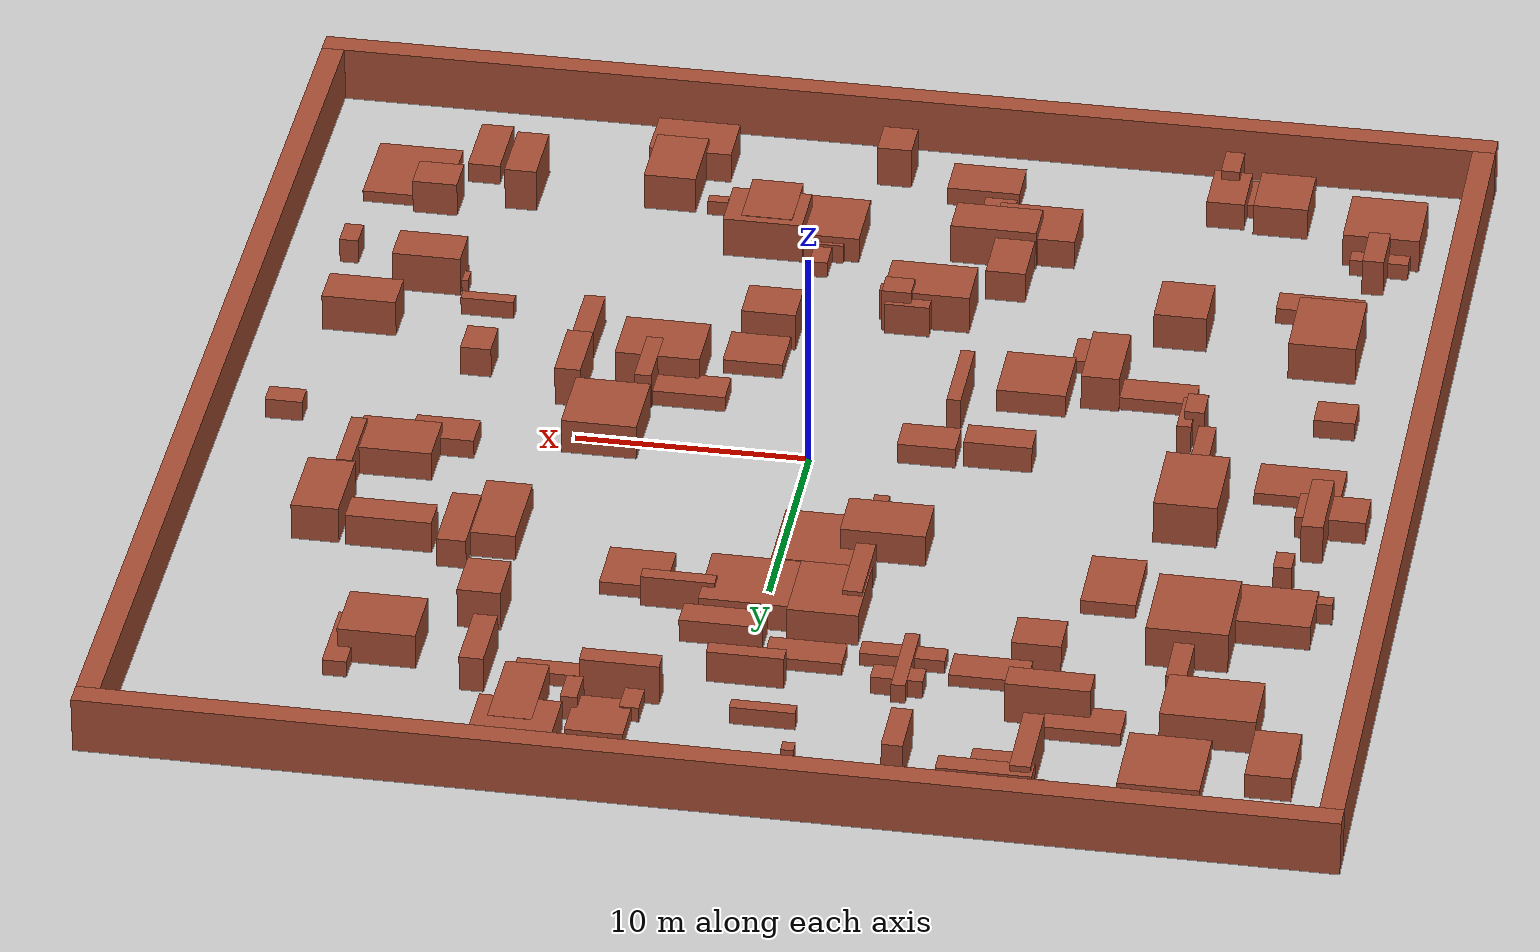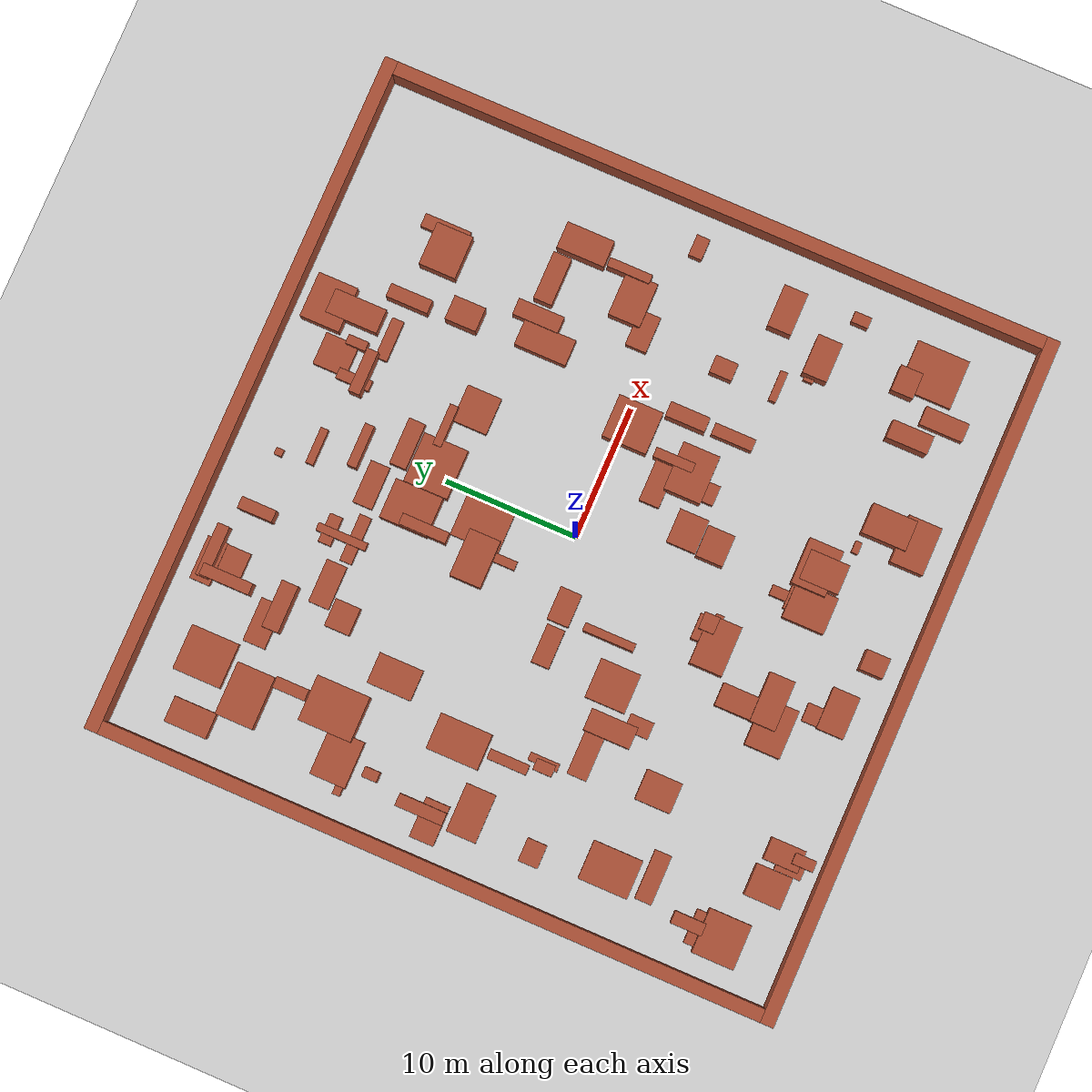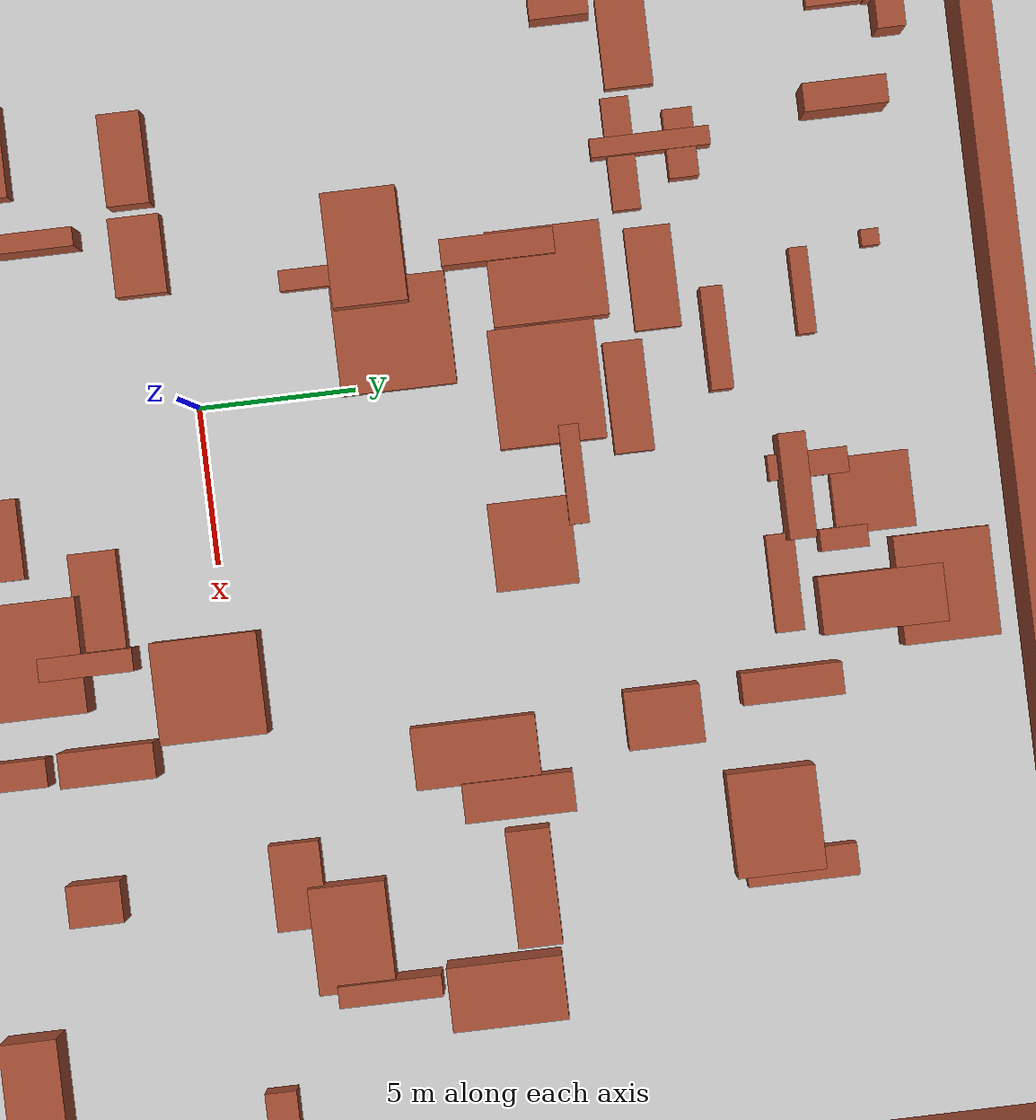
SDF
<?xml version="1.0" ?>
<sdf version="1.6">
  <world name="voronoi_50m_bricks_world">
    <include><uri>model://sun</uri></include>
    <include><uri>model://ground_plane</uri></include>
    <model name="voronoi_maze">
      <pose>0 0 0 0 0 0</pose>
      <static>true</static>
      <link name="obs_0">
        <pose>0.000 25.500 1.250 0 0 0</pose>
        <collision name="col_0"><geometry><box><size>52.000 1.000 2.500</size></box></geometry></collision>
        <visual name="vis_0"><geometry><box><size>52.000 1.000 2.500</size></box></geometry><material><script><name>Gazebo/Bricks</name></script></material></visual>
      </link>
      <link name="obs_1">
        <pose>0.000 -25.500 1.250 0 0 0</pose>
        <collision name="col_1"><geometry><box><size>52.000 1.000 2.500</size></box></geometry></collision>
        <visual name="vis_1"><geometry><box><size>52.000 1.000 2.500</size></box></geometry><material><script><name>Gazebo/Bricks</name></script></material></visual>
      </link>
      <link name="obs_2">
        <pose>-25.500 0.000 1.250 0 0 0</pose>
        <collision name="col_2"><geometry><box><size>1.000 50.000 2.500</size></box></geometry></collision>
        <visual name="vis_2"><geometry><box><size>1.000 50.000 2.500</size></box></geometry><material><script><name>Gazebo/Bricks</name></script></material></visual>
      </link>
      <link name="obs_3">
        <pose>25.500 0.000 1.250 0 0 0</pose>
        <collision name="col_3"><geometry><box><size>1.000 50.000 2.500</size></box></geometry></collision>
        <visual name="vis_3"><geometry><box><size>1.000 50.000 2.500</size></box></geometry><material><script><name>Gazebo/Bricks</name></script></material></visual>
      </link>
      <link name="obs_4">
        <pose>-19.514 16.766 0.769 0 0 0</pose>
        <collision name="col_4"><geometry><box><size>3.969 2.851 1.539</size></box></geometry></collision>
        <visual name="vis_4"><geometry><box><size>3.969 2.851 1.539</size></box></geometry><material><script><name>Gazebo/Bricks</name></script></material></visual>
      </link>
      <link name="obs_5">
        <pose>-22.444 1.428 0.520 0 0 0</pose>
        <collision name="col_5"><geometry><box><size>2.989 1.814 1.040</size></box></geometry></collision>
        <visual name="vis_5"><geometry><box><size>2.989 1.814 1.040</size></box></geometry><material><script><name>Gazebo/Bricks</name></script></material></visual>
      </link>
      <link name="obs_6">
        <pose>-2.500 -11.641 0.738 0 0 0</pose>
        <collision name="col_6"><geometry><box><size>1.933 2.802 1.476</size></box></geometry></collision>
        <visual name="vis_6"><geometry><box><size>1.933 2.802 1.476</size></box></geometry><material><script><name>Gazebo/Bricks</name></script></material></visual>
      </link>
      <link name="obs_7">
        <pose>-11.777 12.767 0.611 0 0 0</pose>
        <collision name="col_7"><geometry><box><size>2.076 1.876 1.222</size></box></geometry></collision>
        <visual name="vis_7"><geometry><box><size>2.076 1.876 1.222</size></box></geometry><material><script><name>Gazebo/Bricks</name></script></material></visual>
      </link>
      <link name="obs_8">
        <pose>-0.184 16.464 0.730 0 0 0</pose>
        <collision name="col_8"><geometry><box><size>3.235 0.702 1.461</size></box></geometry></collision>
        <visual name="vis_8"><geometry><box><size>3.235 0.702 1.461</size></box></geometry><material><script><name>Gazebo/Bricks</name></script></material></visual>
      </link>
      <link name="obs_9">
        <pose>1.845 -17.138 0.599 0 0 0</pose>
        <collision name="col_9"><geometry><box><size>2.773 3.166 1.197</size></box></geometry></collision>
        <visual name="vis_9"><geometry><box><size>2.773 3.166 1.197</size></box></geometry><material><script><name>Gazebo/Bricks</name></script></material></visual>
      </link>
      <link name="obs_10">
        <pose>0.244 10.735 0.407 0 0 0</pose>
        <collision name="col_10"><geometry><box><size>3.179 0.521 0.814</size></box></geometry></collision>
        <visual name="vis_10"><geometry><box><size>3.179 0.521 0.814</size></box></geometry><material><script><name>Gazebo/Bricks</name></script></material></visual>
      </link>
      <link name="obs_11">
        <pose>-20.489 -11.463 0.891 0 0 0</pose>
        <collision name="col_11"><geometry><box><size>2.884 3.697 1.782</size></box></geometry></collision>
        <visual name="vis_11"><geometry><box><size>2.884 3.697 1.782</size></box></geometry><material><script><name>Gazebo/Bricks</name></script></material></visual>
      </link>
      <link name="obs_12">
        <pose>13.333 8.646 0.682 0 0 0</pose>
        <collision name="col_12"><geometry><box><size>1.243 3.497 1.364</size></box></geometry></collision>
        <visual name="vis_12"><geometry><box><size>1.243 3.497 1.364</size></box></geometry><material><script><name>Gazebo/Bricks</name></script></material></visual>
      </link>
      <link name="obs_13">
        <pose>15.660 -18.880 0.993 0 0 0</pose>
        <collision name="col_13"><geometry><box><size>1.394 3.115 1.986</size></box></geometry></collision>
        <visual name="vis_13"><geometry><box><size>1.394 3.115 1.986</size></box></geometry><material><script><name>Gazebo/Bricks</name></script></material></visual>
      </link>
      <link name="obs_14">
        <pose>-8.683 -6.576 0.531 0 0 0</pose>
        <collision name="col_14"><geometry><box><size>2.961 3.024 1.063</size></box></geometry></collision>
        <visual name="vis_14"><geometry><box><size>2.961 3.024 1.063</size></box></geometry><material><script><name>Gazebo/Bricks</name></script></material></visual>
      </link>
      <link name="obs_15">
        <pose>-2.814 21.689 0.303 0 0 0</pose>
        <collision name="col_15"><geometry><box><size>0.530 0.573 0.605</size></box></geometry></collision>
        <visual name="vis_15"><geometry><box><size>0.530 0.573 0.605</size></box></geometry><material><script><name>Gazebo/Bricks</name></script></material></visual>
      </link>
      <link name="obs_16">
        <pose>18.837 3.963 0.801 0 0 0</pose>
        <collision name="col_16"><geometry><box><size>0.678 3.253 1.603</size></box></geometry></collision>
        <visual name="vis_16"><geometry><box><size>0.678 3.253 1.603</size></box></geometry><material><script><name>Gazebo/Bricks</name></script></material></visual>
      </link>
      <link name="obs_17">
        <pose>-2.796 11.420 0.734 0 0 0</pose>
        <collision name="col_17"><geometry><box><size>2.982 3.620 1.468</size></box></geometry></collision>
        <visual name="vis_17"><geometry><box><size>2.982 3.620 1.468</size></box></geometry><material><script><name>Gazebo/Bricks</name></script></material></visual>
      </link>
      <link name="obs_18">
        <pose>3.509 11.538 0.722 0 0 0</pose>
        <collision name="col_18"><geometry><box><size>3.121 0.625 1.443</size></box></geometry></collision>
        <visual name="vis_18"><geometry><box><size>3.121 0.625 1.443</size></box></geometry><material><script><name>Gazebo/Bricks</name></script></material></visual>
      </link>
      <link name="obs_19">
        <pose>8.799 -0.567 0.799 0 0 0</pose>
        <collision name="col_19"><geometry><box><size>3.211 3.370 1.598</size></box></geometry></collision>
        <visual name="vis_19"><geometry><box><size>3.211 3.370 1.598</size></box></geometry><material><script><name>Gazebo/Bricks</name></script></material></visual>
      </link>
      <link name="obs_20">
        <pose>19.319 7.577 0.838 0 0 0</pose>
        <collision name="col_20"><geometry><box><size>2.014 3.630 1.677</size></box></geometry></collision>
        <visual name="vis_20"><geometry><box><size>2.014 3.630 1.677</size></box></geometry><material><script><name>Gazebo/Bricks</name></script></material></visual>
      </link>
      <link name="obs_21">
        <pose>-14.370 17.781 0.308 0 0 0</pose>
        <collision name="col_21"><geometry><box><size>3.302 1.673 0.615</size></box></geometry></collision>
        <visual name="vis_21"><geometry><box><size>3.302 1.673 0.615</size></box></geometry><material><script><name>Gazebo/Bricks</name></script></material></visual>
      </link>
      <link name="obs_22">
        <pose>-3.248 -12.066 0.884 0 0 0</pose>
        <collision name="col_22"><geometry><box><size>3.733 2.464 1.768</size></box></geometry></collision>
        <visual name="vis_22"><geometry><box><size>3.733 2.464 1.768</size></box></geometry><material><script><name>Gazebo/Bricks</name></script></material></visual>
      </link>
      <link name="obs_23">
        <pose>5.892 -3.831 0.360 0 0 0</pose>
        <collision name="col_23"><geometry><box><size>3.513 1.529 0.720</size></box></geometry></collision>
        <visual name="vis_23"><geometry><box><size>3.513 1.529 0.720</size></box></geometry><material><script><name>Gazebo/Bricks</name></script></material></visual>
      </link>
      <link name="obs_24">
        <pose>18.223 -10.753 0.308 0 0 0</pose>
        <collision name="col_24"><geometry><box><size>3.159 0.755 0.616</size></box></geometry></collision>
        <visual name="vis_24"><geometry><box><size>3.159 0.755 0.616</size></box></geometry><material><script><name>Gazebo/Bricks</name></script></material></visual>
      </link>
      <link name="obs_25">
        <pose>1.293 13.528 0.530 0 0 0</pose>
        <collision name="col_25"><geometry><box><size>3.499 1.252 1.060</size></box></geometry></collision>
        <visual name="vis_25"><geometry><box><size>3.499 1.252 1.060</size></box></geometry><material><script><name>Gazebo/Bricks</name></script></material></visual>
      </link>
      <link name="obs_26">
        <pose>-15.832 -4.437 0.872 0 0 0</pose>
        <collision name="col_26"><geometry><box><size>0.859 1.407 1.744</size></box></geometry></collision>
        <visual name="vis_26"><geometry><box><size>0.859 1.407 1.744</size></box></geometry><material><script><name>Gazebo/Bricks</name></script></material></visual>
      </link>
      <link name="obs_27">
        <pose>-12.845 17.015 0.943 0 0 0</pose>
        <collision name="col_27"><geometry><box><size>3.549 1.243 1.886</size></box></geometry></collision>
        <visual name="vis_27"><geometry><box><size>3.549 1.243 1.886</size></box></geometry><material><script><name>Gazebo/Bricks</name></script></material></visual>
      </link>
      <link name="obs_28">
        <pose>10.796 17.524 0.817 0 0 0</pose>
        <collision name="col_28"><geometry><box><size>1.014 3.184 1.635</size></box></geometry></collision>
        <visual name="vis_28"><geometry><box><size>1.014 3.184 1.635</size></box></geometry><material><script><name>Gazebo/Bricks</name></script></material></visual>
      </link>
      <link name="obs_29">
        <pose>7.125 -18.528 0.343 0 0 0</pose>
        <collision name="col_29"><geometry><box><size>0.885 0.502 0.686</size></box></geometry></collision>
        <visual name="vis_29"><geometry><box><size>0.885 0.502 0.686</size></box></geometry><material><script><name>Gazebo/Bricks</name></script></material></visual>
      </link>
      <link name="obs_30">
        <pose>1.992 -15.567 0.381 0 0 0</pose>
        <collision name="col_30"><geometry><box><size>0.781 2.887 0.761</size></box></geometry></collision>
        <visual name="vis_30"><geometry><box><size>0.781 2.887 0.761</size></box></geometry><material><script><name>Gazebo/Bricks</name></script></material></visual>
      </link>
      <link name="obs_31">
        <pose>-5.303 -17.244 0.923 0 0 0</pose>
        <collision name="col_31"><geometry><box><size>3.735 1.903 1.846</size></box></geometry></collision>
        <visual name="vis_31"><geometry><box><size>3.735 1.903 1.846</size></box></geometry><material><script><name>Gazebo/Bricks</name></script></material></visual>
      </link>
      <link name="obs_32">
        <pose>-11.846 23.100 0.319 0 0 0</pose>
        <collision name="col_32"><geometry><box><size>3.273 1.519 0.638</size></box></geometry></collision>
        <visual name="vis_32"><geometry><box><size>3.273 1.519 0.638</size></box></geometry><material><script><name>Gazebo/Bricks</name></script></material></visual>
      </link>
      <link name="obs_33">
        <pose>6.536 -6.251 0.391 0 0 0</pose>
        <collision name="col_33"><geometry><box><size>1.499 3.540 0.783</size></box></geometry></collision>
        <visual name="vis_33"><geometry><box><size>1.499 3.540 0.783</size></box></geometry><material><script><name>Gazebo/Bricks</name></script></material></visual>
      </link>
      <link name="obs_34">
        <pose>4.690 18.373 0.933 0 0 0</pose>
        <collision name="col_34"><geometry><box><size>3.321 0.858 1.866</size></box></geometry></collision>
        <visual name="vis_34"><geometry><box><size>3.321 0.858 1.866</size></box></geometry><material><script><name>Gazebo/Bricks</name></script></material></visual>
      </link>
      <link name="obs_35">
        <pose>-4.165 -21.844 0.425 0 0 0</pose>
        <collision name="col_35"><geometry><box><size>3.175 2.037 0.851</size></box></geometry></collision>
        <visual name="vis_35"><geometry><box><size>3.175 2.037 0.851</size></box></geometry><material><script><name>Gazebo/Bricks</name></script></material></visual>
      </link>
      <link name="obs_36">
        <pose>-12.565 21.288 0.894 0 0 0</pose>
        <collision name="col_36"><geometry><box><size>0.873 3.784 1.787</size></box></geometry></collision>
        <visual name="vis_36"><geometry><box><size>0.873 3.784 1.787</size></box></geometry><material><script><name>Gazebo/Bricks</name></script></material></visual>
      </link>
      <link name="obs_37">
        <pose>-21.748 -17.873 0.851 0 0 0</pose>
        <collision name="col_37"><geometry><box><size>0.927 2.316 1.703</size></box></geometry></collision>
        <visual name="vis_37"><geometry><box><size>0.927 2.316 1.703</size></box></geometry><material><script><name>Gazebo/Bricks</name></script></material></visual>
      </link>
      <link name="obs_38">
        <pose>8.521 20.668 0.682 0 0 0</pose>
        <collision name="col_38"><geometry><box><size>1.829 3.945 1.363</size></box></geometry></collision>
        <visual name="vis_38"><geometry><box><size>1.829 3.945 1.363</size></box></geometry><material><script><name>Gazebo/Bricks</name></script></material></visual>
      </link>
      <link name="obs_39">
        <pose>-5.674 -5.009 0.838 0 0 0</pose>
        <collision name="col_39"><geometry><box><size>0.598 3.861 1.676</size></box></geometry></collision>
        <visual name="vis_39"><geometry><box><size>0.598 3.861 1.676</size></box></geometry><material><script><name>Gazebo/Bricks</name></script></material></visual>
      </link>
      <link name="obs_40">
        <pose>-6.254 -15.214 0.721 0 0 0</pose>
        <collision name="col_40"><geometry><box><size>1.726 3.194 1.442</size></box></geometry></collision>
        <visual name="vis_40"><geometry><box><size>1.726 3.194 1.442</size></box></geometry><material><script><name>Gazebo/Bricks</name></script></material></visual>
      </link>
      <link name="obs_41">
        <pose>-21.604 -6.039 0.434 0 0 0</pose>
        <collision name="col_41"><geometry><box><size>1.751 1.480 0.869</size></box></geometry></collision>
        <visual name="vis_41"><geometry><box><size>1.751 1.480 0.869</size></box></geometry><material><script><name>Gazebo/Bricks</name></script></material></visual>
      </link>
      <link name="obs_42">
        <pose>8.334 22.689 0.679 0 0 0</pose>
        <collision name="col_42"><geometry><box><size>3.418 3.019 1.357</size></box></geometry></collision>
        <visual name="vis_42"><geometry><box><size>3.418 3.019 1.357</size></box></geometry><material><script><name>Gazebo/Bricks</name></script></material></visual>
      </link>
      <link name="obs_43">
        <pose>-17.802 14.049 0.695 0 0 0</pose>
        <collision name="col_43"><geometry><box><size>0.854 2.448 1.390</size></box></geometry></collision>
        <visual name="vis_43"><geometry><box><size>0.854 2.448 1.390</size></box></geometry><material><script><name>Gazebo/Bricks</name></script></material></visual>
      </link>
      <link name="obs_44">
        <pose>-3.798 9.990 0.832 0 0 0</pose>
        <collision name="col_44"><geometry><box><size>0.829 3.567 1.664</size></box></geometry></collision>
        <visual name="vis_44"><geometry><box><size>0.829 3.567 1.664</size></box></geometry><material><script><name>Gazebo/Bricks</name></script></material></visual>
      </link>
      <link name="obs_45">
        <pose>10.822 -7.467 0.670 0 0 0</pose>
        <collision name="col_45"><geometry><box><size>0.899 3.109 1.340</size></box></geometry></collision>
        <visual name="vis_45"><geometry><box><size>0.899 3.109 1.340</size></box></geometry><material><script><name>Gazebo/Bricks</name></script></material></visual>
      </link>
      <link name="obs_46">
        <pose>-18.091 20.496 0.402 0 0 0</pose>
        <collision name="col_46"><geometry><box><size>3.385 3.622 0.804</size></box></geometry></collision>
        <visual name="vis_46"><geometry><box><size>3.385 3.622 0.804</size></box></geometry><material><script><name>Gazebo/Bricks</name></script></material></visual>
      </link>
      <link name="obs_47">
        <pose>-4.925 -1.257 0.471 0 0 0</pose>
        <collision name="col_47"><geometry><box><size>2.486 1.625 0.943</size></box></geometry></collision>
        <visual name="vis_47"><geometry><box><size>2.486 1.625 0.943</size></box></geometry><material><script><name>Gazebo/Bricks</name></script></material></visual>
      </link>
      <link name="obs_48">
        <pose>-10.543 -9.396 0.312 0 0 0</pose>
        <collision name="col_48"><geometry><box><size>1.254 1.777 0.623</size></box></geometry></collision>
        <visual name="vis_48"><geometry><box><size>1.254 1.777 0.623</size></box></geometry><material><script><name>Gazebo/Bricks</name></script></material></visual>
      </link>
      <link name="obs_49">
        <pose>-2.368 14.741 0.281 0 0 0</pose>
        <collision name="col_49"><geometry><box><size>3.244 1.468 0.563</size></box></geometry></collision>
        <visual name="vis_49"><geometry><box><size>3.244 1.468 0.563</size></box></geometry><material><script><name>Gazebo/Bricks</name></script></material></visual>
      </link>
      <link name="obs_50">
        <pose>-20.763 -0.982 0.284 0 0 0</pose>
        <collision name="col_50"><geometry><box><size>3.652 2.251 0.569</size></box></geometry></collision>
        <visual name="vis_50"><geometry><box><size>3.652 2.251 0.569</size></box></geometry><material><script><name>Gazebo/Bricks</name></script></material></visual>
      </link>
      <link name="obs_51">
        <pose>20.654 -7.436 0.845 0 0 0</pose>
        <collision name="col_51"><geometry><box><size>3.211 1.816 1.690</size></box></geometry></collision>
        <visual name="vis_51"><geometry><box><size>3.211 1.816 1.690</size></box></geometry><material><script><name>Gazebo/Bricks</name></script></material></visual>
      </link>
      <link name="obs_52">
        <pose>-6.985 -17.941 0.680 0 0 0</pose>
        <collision name="col_52"><geometry><box><size>3.622 2.654 1.361</size></box></geometry></collision>
        <visual name="vis_52"><geometry><box><size>3.622 2.654 1.361</size></box></geometry><material><script><name>Gazebo/Bricks</name></script></material></visual>
      </link>
      <link name="obs_53">
        <pose>15.083 -4.900 0.693 0 0 0</pose>
        <collision name="col_53"><geometry><box><size>1.320 1.714 1.385</size></box></geometry></collision>
        <visual name="vis_53"><geometry><box><size>1.320 1.714 1.385</size></box></geometry><material><script><name>Gazebo/Bricks</name></script></material></visual>
      </link>
      <link name="obs_54">
        <pose>-16.460 -1.964 0.639 0 0 0</pose>
        <collision name="col_54"><geometry><box><size>0.757 2.969 1.278</size></box></geometry></collision>
        <visual name="vis_54"><geometry><box><size>0.757 2.969 1.278</size></box></geometry><material><script><name>Gazebo/Bricks</name></script></material></visual>
      </link>
      <link name="obs_55">
        <pose>-19.807 -14.428 0.380 0 0 0</pose>
        <collision name="col_55"><geometry><box><size>3.698 1.265 0.759</size></box></geometry></collision>
        <visual name="vis_55"><geometry><box><size>3.698 1.265 0.759</size></box></geometry><material><script><name>Gazebo/Bricks</name></script></material></visual>
      </link>
      <link name="obs_56">
        <pose>-0.550 10.946 0.485 0 0 0</pose>
        <collision name="col_56"><geometry><box><size>2.217 0.752 0.969</size></box></geometry></collision>
        <visual name="vis_56"><geometry><box><size>2.217 0.752 0.969</size></box></geometry><material><script><name>Gazebo/Bricks</name></script></material></visual>
      </link>
      <link name="obs_57">
        <pose>22.471 0.114 0.469 0 0 0</pose>
        <collision name="col_57"><geometry><box><size>1.605 1.008 0.938</size></box></geometry></collision>
        <visual name="vis_57"><geometry><box><size>1.605 1.008 0.938</size></box></geometry><material><script><name>Gazebo/Bricks</name></script></material></visual>
      </link>
      <link name="obs_58">
        <pose>19.269 -17.187 0.787 0 0 0</pose>
        <collision name="col_58"><geometry><box><size>1.958 1.674 1.575</size></box></geometry></collision>
        <visual name="vis_58"><geometry><box><size>1.958 1.674 1.575</size></box></geometry><material><script><name>Gazebo/Bricks</name></script></material></visual>
      </link>
      <link name="obs_59">
        <pose>18.414 -11.043 0.920 0 0 0</pose>
        <collision name="col_59"><geometry><box><size>2.980 1.855 1.840</size></box></geometry></collision>
        <visual name="vis_59"><geometry><box><size>2.980 1.855 1.840</size></box></geometry><material><script><name>Gazebo/Bricks</name></script></material></visual>
      </link>
      <link name="obs_60">
        <pose>-4.303 5.861 0.737 0 0 0</pose>
        <collision name="col_60"><geometry><box><size>3.606 2.360 1.473</size></box></geometry></collision>
        <visual name="vis_60"><geometry><box><size>3.606 2.360 1.473</size></box></geometry><material><script><name>Gazebo/Bricks</name></script></material></visual>
      </link>
      <link name="obs_61">
        <pose>22.176 -12.529 0.572 0 0 0</pose>
        <collision name="col_61"><geometry><box><size>0.818 1.285 1.145</size></box></geometry></collision>
        <visual name="vis_61"><geometry><box><size>0.818 1.285 1.145</size></box></geometry><material><script><name>Gazebo/Bricks</name></script></material></visual>
      </link>
      <link name="obs_62">
        <pose>-14.768 -22.212 0.644 0 0 0</pose>
        <collision name="col_62"><geometry><box><size>1.651 2.592 1.288</size></box></geometry></collision>
        <visual name="vis_62"><geometry><box><size>1.651 2.592 1.288</size></box></geometry><material><script><name>Gazebo/Bricks</name></script></material></visual>
      </link>
      <link name="obs_63">
        <pose>-2.673 -11.567 0.732 0 0 0</pose>
        <collision name="col_63"><geometry><box><size>3.061 0.599 1.465</size></box></geometry></collision>
        <visual name="vis_63"><geometry><box><size>3.061 0.599 1.465</size></box></geometry><material><script><name>Gazebo/Bricks</name></script></material></visual>
      </link>
      <link name="obs_64">
        <pose>11.343 13.426 0.919 0 0 0</pose>
        <collision name="col_64"><geometry><box><size>1.829 2.377 1.837</size></box></geometry></collision>
        <visual name="vis_64"><geometry><box><size>1.829 2.377 1.837</size></box></geometry><material><script><name>Gazebo/Bricks</name></script></material></visual>
      </link>
      <link name="obs_65">
        <pose>-15.427 -22.935 0.324 0 0 0</pose>
        <collision name="col_65"><geometry><box><size>1.142 1.996 0.648</size></box></geometry></collision>
        <visual name="vis_65"><geometry><box><size>1.142 1.996 0.648</size></box></geometry><material><script><name>Gazebo/Bricks</name></script></material></visual>
      </link>
      <link name="obs_66">
        <pose>4.039 18.902 0.343 0 0 0</pose>
        <collision name="col_66"><geometry><box><size>0.818 2.542 0.686</size></box></geometry></collision>
        <visual name="vis_66"><geometry><box><size>0.818 2.542 0.686</size></box></geometry><material><script><name>Gazebo/Bricks</name></script></material></visual>
      </link>
      <link name="obs_67">
        <pose>17.639 -20.810 0.464 0 0 0</pose>
        <collision name="col_67"><geometry><box><size>1.414 3.295 0.928</size></box></geometry></collision>
        <visual name="vis_67"><geometry><box><size>1.414 3.295 0.928</size></box></geometry><material><script><name>Gazebo/Bricks</name></script></material></visual>
      </link>
      <link name="obs_68">
        <pose>4.497 -17.057 0.933 0 0 0</pose>
        <collision name="col_68"><geometry><box><size>2.230 2.957 1.867</size></box></geometry></collision>
        <visual name="vis_68"><geometry><box><size>2.230 2.957 1.867</size></box></geometry><material><script><name>Gazebo/Bricks</name></script></material></visual>
      </link>
      <link name="obs_69">
        <pose>-22.432 19.710 0.567 0 0 0</pose>
        <collision name="col_69"><geometry><box><size>1.919 3.192 1.134</size></box></geometry></collision>
        <visual name="vis_69"><geometry><box><size>1.919 3.192 1.134</size></box></geometry><material><script><name>Gazebo/Bricks</name></script></material></visual>
      </link>
      <link name="obs_70">
        <pose>-16.515 1.718 0.990 0 0 0</pose>
        <collision name="col_70"><geometry><box><size>2.689 3.892 1.981</size></box></geometry></collision>
        <visual name="vis_70"><geometry><box><size>2.689 3.892 1.981</size></box></geometry><material><script><name>Gazebo/Bricks</name></script></material></visual>
      </link>
      <link name="obs_71">
        <pose>10.799 -3.942 0.921 0 0 0</pose>
        <collision name="col_71"><geometry><box><size>1.110 3.001 1.841</size></box></geometry></collision>
        <visual name="vis_71"><geometry><box><size>1.110 3.001 1.841</size></box></geometry><material><script><name>Gazebo/Bricks</name></script></material></visual>
      </link>
      <link name="obs_72">
        <pose>-14.130 7.722 0.330 0 0 0</pose>
        <collision name="col_72"><geometry><box><size>2.312 3.347 0.659</size></box></geometry></collision>
        <visual name="vis_72"><geometry><box><size>2.312 3.347 0.659</size></box></geometry><material><script><name>Gazebo/Bricks</name></script></material></visual>
      </link>
      <link name="obs_73">
        <pose>-14.705 -23.622 0.862 0 0 0</pose>
        <collision name="col_73"><geometry><box><size>0.819 1.584 1.723</size></box></geometry></collision>
        <visual name="vis_73"><geometry><box><size>0.819 1.584 1.723</size></box></geometry><material><script><name>Gazebo/Bricks</name></script></material></visual>
      </link>
      <link name="obs_74">
        <pose>-21.056 6.478 0.817 0 0 0</pose>
        <collision name="col_74"><geometry><box><size>0.769 1.128 1.635</size></box></geometry></collision>
        <visual name="vis_74"><geometry><box><size>0.769 1.128 1.635</size></box></geometry><material><script><name>Gazebo/Bricks</name></script></material></visual>
      </link>
      <link name="obs_75">
        <pose>16.549 17.242 0.377 0 0 0</pose>
        <collision name="col_75"><geometry><box><size>1.014 3.532 0.753</size></box></geometry></collision>
        <visual name="vis_75"><geometry><box><size>1.014 3.532 0.753</size></box></geometry><material><script><name>Gazebo/Bricks</name></script></material></visual>
      </link>
      <link name="obs_76">
        <pose>5.165 20.807 0.316 0 0 0</pose>
        <collision name="col_76"><geometry><box><size>2.432 2.521 0.632</size></box></geometry></collision>
        <visual name="vis_76"><geometry><box><size>2.432 2.521 0.632</size></box></geometry><material><script><name>Gazebo/Bricks</name></script></material></visual>
      </link>
      <link name="obs_77">
        <pose>20.716 -18.809 0.265 0 0 0</pose>
        <collision name="col_77"><geometry><box><size>3.697 3.959 0.529</size></box></geometry></collision>
        <visual name="vis_77"><geometry><box><size>3.697 3.959 0.529</size></box></geometry><material><script><name>Gazebo/Bricks</name></script></material></visual>
      </link>
      <link name="obs_78">
        <pose>-11.577 22.005 0.295 0 0 0</pose>
        <collision name="col_78"><geometry><box><size>2.664 2.928 0.589</size></box></geometry></collision>
        <visual name="vis_78"><geometry><box><size>2.664 2.928 0.589</size></box></geometry><material><script><name>Gazebo/Bricks</name></script></material></visual>
      </link>
      <link name="obs_79">
        <pose>-6.440 16.098 0.413 0 0 0</pose>
        <collision name="col_79"><geometry><box><size>2.178 0.940 0.826</size></box></geometry></collision>
        <visual name="vis_79"><geometry><box><size>2.178 0.940 0.826</size></box></geometry><material><script><name>Gazebo/Bricks</name></script></material></visual>
      </link>
      <link name="obs_80">
        <pose>-7.944 -1.306 0.618 0 0 0</pose>
        <collision name="col_80"><geometry><box><size>2.904 1.347 1.236</size></box></geometry></collision>
        <visual name="vis_80"><geometry><box><size>2.904 1.347 1.236</size></box></geometry><material><script><name>Gazebo/Bricks</name></script></material></visual>
      </link>
      <link name="obs_81">
        <pose>-10.054 14.719 0.279 0 0 0</pose>
        <collision name="col_81"><geometry><box><size>3.268 1.543 0.558</size></box></geometry></collision>
        <visual name="vis_81"><geometry><box><size>3.268 1.543 0.558</size></box></geometry><material><script><name>Gazebo/Bricks</name></script></material></visual>
      </link>
      <link name="obs_82">
        <pose>-11.118 23.023 0.757 0 0 0</pose>
        <collision name="col_82"><geometry><box><size>3.951 0.892 1.514</size></box></geometry></collision>
        <visual name="vis_82"><geometry><box><size>3.951 0.892 1.514</size></box></geometry><material><script><name>Gazebo/Bricks</name></script></material></visual>
      </link>
      <link name="obs_83">
        <pose>15.328 1.416 0.436 0 0 0</pose>
        <collision name="col_83"><geometry><box><size>2.731 1.600 0.873</size></box></geometry></collision>
        <visual name="vis_83"><geometry><box><size>2.731 1.600 0.873</size></box></geometry><material><script><name>Gazebo/Bricks</name></script></material></visual>
      </link>
      <link name="obs_84">
        <pose>-21.838 -19.794 0.384 0 0 0</pose>
        <collision name="col_84"><geometry><box><size>2.543 3.368 0.769</size></box></geometry></collision>
        <visual name="vis_84"><geometry><box><size>2.543 3.368 0.769</size></box></geometry><material><script><name>Gazebo/Bricks</name></script></material></visual>
      </link>
      <link name="obs_85">
        <pose>-1.386 19.360 0.406 0 0 0</pose>
        <collision name="col_85"><geometry><box><size>2.735 0.584 0.811</size></box></geometry></collision>
        <visual name="vis_85"><geometry><box><size>2.735 0.584 0.811</size></box></geometry><material><script><name>Gazebo/Bricks</name></script></material></visual>
      </link>
      <link name="obs_86">
        <pose>-17.878 10.657 0.934 0 0 0</pose>
        <collision name="col_86"><geometry><box><size>3.423 4.000 1.868</size></box></geometry></collision>
        <visual name="vis_86"><geometry><box><size>3.423 4.000 1.868</size></box></geometry><material><script><name>Gazebo/Bricks</name></script></material></visual>
      </link>
      <link name="obs_87">
        <pose>-6.353 14.198 0.306 0 0 0</pose>
        <collision name="col_87"><geometry><box><size>3.566 0.893 0.613</size></box></geometry></collision>
        <visual name="vis_87"><geometry><box><size>3.566 0.893 0.613</size></box></geometry><material><script><name>Gazebo/Bricks</name></script></material></visual>
      </link>
      <link name="obs_88">
        <pose>2.453 -16.515 0.444 0 0 0</pose>
        <collision name="col_88"><geometry><box><size>2.693 2.287 0.889</size></box></geometry></collision>
        <visual name="vis_88"><geometry><box><size>2.693 2.287 0.889</size></box></geometry><material><script><name>Gazebo/Bricks</name></script></material></visual>
      </link>
      <link name="obs_89">
        <pose>-21.895 2.300 0.900 0 0 0</pose>
        <collision name="col_89"><geometry><box><size>0.932 3.560 1.800</size></box></geometry></collision>
        <visual name="vis_89"><geometry><box><size>0.932 3.560 1.800</size></box></geometry><material><script><name>Gazebo/Bricks</name></script></material></visual>
      </link>
      <link name="obs_90">
        <pose>15.001 16.521 0.802 0 0 0</pose>
        <collision name="col_90"><geometry><box><size>3.275 2.783 1.603</size></box></geometry></collision>
        <visual name="vis_90"><geometry><box><size>3.275 2.783 1.603</size></box></geometry><material><script><name>Gazebo/Bricks</name></script></material></visual>
      </link>
      <link name="obs_91">
        <pose>-15.483 -4.252 0.687 0 0 0</pose>
        <collision name="col_91"><geometry><box><size>0.607 2.209 1.373</size></box></geometry></collision>
        <visual name="vis_91"><geometry><box><size>0.607 2.209 1.373</size></box></geometry><material><script><name>Gazebo/Bricks</name></script></material></visual>
      </link>
      <link name="obs_92">
        <pose>-20.017 -11.760 0.789 0 0 0</pose>
        <collision name="col_92"><geometry><box><size>1.341 2.907 1.577</size></box></geometry></collision>
        <visual name="vis_92"><geometry><box><size>1.341 2.907 1.577</size></box></geometry><material><script><name>Gazebo/Bricks</name></script></material></visual>
      </link>
      <link name="obs_93">
        <pose>-1.585 6.400 0.257 0 0 0</pose>
        <collision name="col_93"><geometry><box><size>3.570 3.672 0.514</size></box></geometry></collision>
        <visual name="vis_93"><geometry><box><size>3.570 3.672 0.514</size></box></geometry><material><script><name>Gazebo/Bricks</name></script></material></visual>
      </link>
      <link name="obs_94">
        <pose>9.249 -20.021 0.850 0 0 0</pose>
        <collision name="col_94"><geometry><box><size>2.280 3.347 1.700</size></box></geometry></collision>
        <visual name="vis_94"><geometry><box><size>2.280 3.347 1.700</size></box></geometry><material><script><name>Gazebo/Bricks</name></script></material></visual>
      </link>
      <link name="obs_95">
        <pose>-0.062 -22.791 0.949 0 0 0</pose>
        <collision name="col_95"><geometry><box><size>1.517 1.778 1.899</size></box></geometry></collision>
        <visual name="vis_95"><geometry><box><size>1.517 1.778 1.899</size></box></geometry><material><script><name>Gazebo/Bricks</name></script></material></visual>
      </link>
      <link name="obs_96">
        <pose>15.482 -8.953 0.418 0 0 0</pose>
        <collision name="col_96"><geometry><box><size>2.301 0.566 0.835</size></box></geometry></collision>
        <visual name="vis_96"><geometry><box><size>2.301 0.566 0.835</size></box></geometry><material><script><name>Gazebo/Bricks</name></script></material></visual>
      </link>
      <link name="obs_97">
        <pose>-22.353 8.203 0.491 0 0 0</pose>
        <collision name="col_97"><geometry><box><size>2.000 0.565 0.982</size></box></geometry></collision>
        <visual name="vis_97"><geometry><box><size>2.000 0.565 0.982</size></box></geometry><material><script><name>Gazebo/Bricks</name></script></material></visual>
      </link>
      <link name="obs_98">
        <pose>3.163 -9.310 0.877 0 0 0</pose>
        <collision name="col_98"><geometry><box><size>2.348 2.049 1.754</size></box></geometry></collision>
        <visual name="vis_98"><geometry><box><size>2.348 2.049 1.754</size></box></geometry><material><script><name>Gazebo/Bricks</name></script></material></visual>
      </link>
      <link name="obs_99">
        <pose>5.514 10.014 0.313 0 0 0</pose>
        <collision name="col_99"><geometry><box><size>2.792 2.612 0.626</size></box></geometry></collision>
        <visual name="vis_99"><geometry><box><size>2.792 2.612 0.626</size></box></geometry><material><script><name>Gazebo/Bricks</name></script></material></visual>
      </link>
      <link name="obs_100">
        <pose>-6.580 15.143 0.437 0 0 0</pose>
        <collision name="col_100"><geometry><box><size>0.596 3.781 0.874</size></box></geometry></collision>
        <visual name="vis_100"><geometry><box><size>0.596 3.781 0.874</size></box></geometry><material><script><name>Gazebo/Bricks</name></script></material></visual>
      </link>
      <link name="obs_101">
        <pose>0.618 11.035 0.625 0 0 0</pose>
        <collision name="col_101"><geometry><box><size>3.740 3.357 1.250</size></box></geometry></collision>
        <visual name="vis_101"><geometry><box><size>3.740 3.357 1.250</size></box></geometry><material><script><name>Gazebo/Bricks</name></script></material></visual>
      </link>
      <link name="obs_102">
        <pose>7.674 17.750 0.301 0 0 0</pose>
        <collision name="col_102"><geometry><box><size>3.098 0.903 0.603</size></box></geometry></collision>
        <visual name="vis_102"><geometry><box><size>3.098 0.903 0.603</size></box></geometry><material><script><name>Gazebo/Bricks</name></script></material></visual>
      </link>
      <link name="obs_103">
        <pose>4.614 -16.468 0.926 0 0 0</pose>
        <collision name="col_103"><geometry><box><size>3.465 2.577 1.852</size></box></geometry></collision>
        <visual name="vis_103"><geometry><box><size>3.465 2.577 1.852</size></box></geometry><material><script><name>Gazebo/Bricks</name></script></material></visual>
      </link>
      <link name="obs_104">
        <pose>7.622 -4.263 0.835 0 0 0</pose>
        <collision name="col_104"><geometry><box><size>0.725 2.974 1.669</size></box></geometry></collision>
        <visual name="vis_104"><geometry><box><size>0.725 2.974 1.669</size></box></geometry><material><script><name>Gazebo/Bricks</name></script></material></visual>
      </link>
      <link name="obs_105">
        <pose>7.282 -5.762 0.827 0 0 0</pose>
        <collision name="col_105"><geometry><box><size>3.641 2.809 1.654</size></box></geometry></collision>
        <visual name="vis_105"><geometry><box><size>3.641 2.809 1.654</size></box></geometry><material><script><name>Gazebo/Bricks</name></script></material></visual>
      </link>
      <link name="obs_106">
        <pose>-11.513 -7.618 0.816 0 0 0</pose>
        <collision name="col_106"><geometry><box><size>1.633 3.497 1.631</size></box></geometry></collision>
        <visual name="vis_106"><geometry><box><size>1.633 3.497 1.631</size></box></geometry><material><script><name>Gazebo/Bricks</name></script></material></visual>
      </link>
      <link name="obs_107">
        <pose>16.176 8.776 0.737 0 0 0</pose>
        <collision name="col_107"><geometry><box><size>3.660 1.396 1.473</size></box></geometry></collision>
        <visual name="vis_107"><geometry><box><size>3.660 1.396 1.473</size></box></geometry><material><script><name>Gazebo/Bricks</name></script></material></visual>
      </link>
      <link name="obs_108">
        <pose>-7.230 21.295 0.905 0 0 0</pose>
        <collision name="col_108"><geometry><box><size>0.888 2.639 1.810</size></box></geometry></collision>
        <visual name="vis_108"><geometry><box><size>0.888 2.639 1.810</size></box></geometry><material><script><name>Gazebo/Bricks</name></script></material></visual>
      </link>
      <link name="obs_109">
        <pose>-21.826 -20.424 0.778 0 0 0</pose>
        <collision name="col_109"><geometry><box><size>3.327 3.151 1.556</size></box></geometry></collision>
        <visual name="vis_109"><geometry><box><size>3.327 3.151 1.556</size></box></geometry><material><script><name>Gazebo/Bricks</name></script></material></visual>
      </link>
      <link name="obs_110">
        <pose>-4.960 -20.535 0.272 0 0 0</pose>
        <collision name="col_110"><geometry><box><size>1.386 1.732 0.544</size></box></geometry></collision>
        <visual name="vis_110"><geometry><box><size>1.386 1.732 0.544</size></box></geometry><material><script><name>Gazebo/Bricks</name></script></material></visual>
      </link>
      <link name="obs_111">
        <pose>3.462 -7.115 0.341 0 0 0</pose>
        <collision name="col_111"><geometry><box><size>2.565 2.224 0.681</size></box></geometry></collision>
        <visual name="vis_111"><geometry><box><size>2.565 2.224 0.681</size></box></geometry><material><script><name>Gazebo/Bricks</name></script></material></visual>
      </link>
      <link name="obs_112">
        <pose>8.834 -22.256 0.705 0 0 0</pose>
        <collision name="col_112"><geometry><box><size>3.620 2.493 1.411</size></box></geometry></collision>
        <visual name="vis_112"><geometry><box><size>3.620 2.493 1.411</size></box></geometry><material><script><name>Gazebo/Bricks</name></script></material></visual>
      </link>
      <link name="obs_113">
        <pose>-20.949 9.127 0.566 0 0 0</pose>
        <collision name="col_113"><geometry><box><size>3.501 2.679 1.132</size></box></geometry></collision>
        <visual name="vis_113"><geometry><box><size>3.501 2.679 1.132</size></box></geometry><material><script><name>Gazebo/Bricks</name></script></material></visual>
      </link>
      <link name="obs_114">
        <pose>-3.631 4.001 0.322 0 0 0</pose>
        <collision name="col_114"><geometry><box><size>0.659 1.920 0.645</size></box></geometry></collision>
        <visual name="vis_114"><geometry><box><size>0.659 1.920 0.645</size></box></geometry><material><script><name>Gazebo/Bricks</name></script></material></visual>
      </link>
      <link name="obs_115">
        <pose>11.784 7.460 0.594 0 0 0</pose>
        <collision name="col_115"><geometry><box><size>1.963 3.938 1.188</size></box></geometry></collision>
        <visual name="vis_115"><geometry><box><size>1.963 3.938 1.188</size></box></geometry><material><script><name>Gazebo/Bricks</name></script></material></visual>
      </link>
      <link name="obs_116">
        <pose>-13.573 -6.765 0.306 0 0 0</pose>
        <collision name="col_116"><geometry><box><size>3.968 1.479 0.612</size></box></geometry></collision>
        <visual name="vis_116"><geometry><box><size>3.968 1.479 0.612</size></box></geometry><material><script><name>Gazebo/Bricks</name></script></material></visual>
      </link>
      <link name="obs_117">
        <pose>6.486 19.711 0.563 0 0 0</pose>
        <collision name="col_117"><geometry><box><size>0.699 1.515 1.127</size></box></geometry></collision>
        <visual name="vis_117"><geometry><box><size>0.699 1.515 1.127</size></box></geometry><material><script><name>Gazebo/Bricks</name></script></material></visual>
      </link>
      <link name="obs_118">
        <pose>-17.208 -21.997 0.745 0 0 0</pose>
        <collision name="col_118"><geometry><box><size>2.377 2.711 1.490</size></box></geometry></collision>
        <visual name="vis_118"><geometry><box><size>2.377 2.711 1.490</size></box></geometry><material><script><name>Gazebo/Bricks</name></script></material></visual>
      </link>
      <link name="obs_119">
        <pose>-14.189 -12.411 0.835 0 0 0</pose>
        <collision name="col_119"><geometry><box><size>2.277 2.672 1.670</size></box></geometry></collision>
        <visual name="vis_119"><geometry><box><size>2.277 2.672 1.670</size></box></geometry><material><script><name>Gazebo/Bricks</name></script></material></visual>
      </link>
      <link name="obs_120">
        <pose>17.077 2.941 0.668 0 0 0</pose>
        <collision name="col_120"><geometry><box><size>3.358 2.421 1.337</size></box></geometry></collision>
        <visual name="vis_120"><geometry><box><size>3.358 2.421 1.337</size></box></geometry><material><script><name>Gazebo/Bricks</name></script></material></visual>
      </link>
      <link name="obs_121">
        <pose>-2.012 -11.040 0.999 0 0 0</pose>
        <collision name="col_121"><geometry><box><size>1.265 1.144 1.997</size></box></geometry></collision>
        <visual name="vis_121"><geometry><box><size>1.265 1.144 1.997</size></box></geometry><material><script><name>Gazebo/Bricks</name></script></material></visual>
      </link>
    </model>
  </world>
</sdf>
